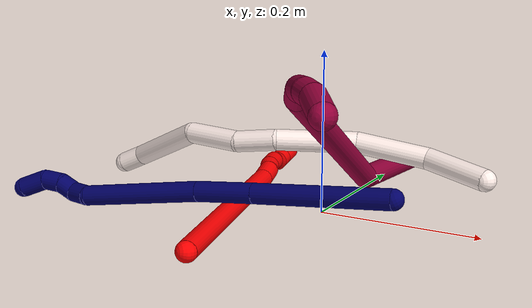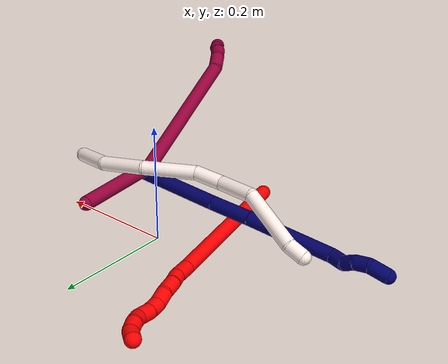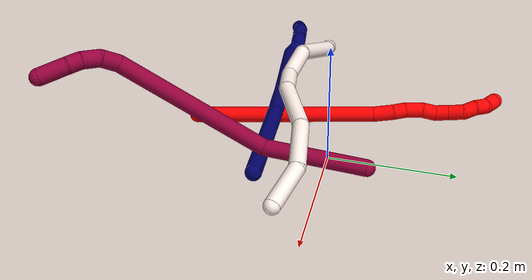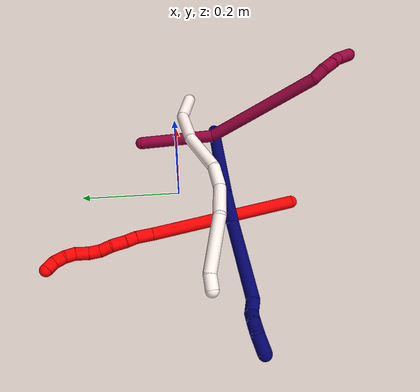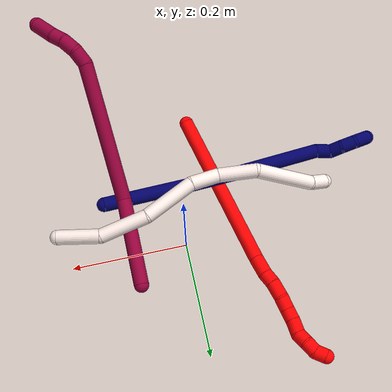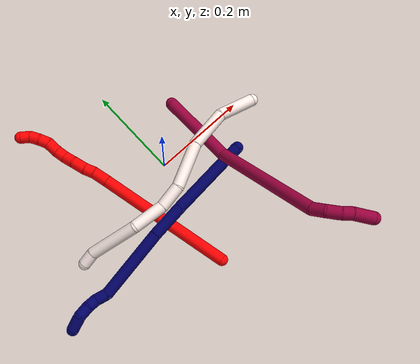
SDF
<sdf version="1.7">
 <world name="default">
  <model name="photoneo_s_sensor">
   <static>1</static>
   <pose>0 0 2 1.57079 1.57079 3.14159</pose>
   <link name="link">
    <inertial><mass>0.1</mass></inertial>
    <sensor name="sensor" type="depth">
     <update_rate>30</update_rate>
     <camera>
      <horizontal_fov>1.22</horizontal_fov>
      <image><width>1920</width><height>1200</height><format>B8G8R8</format></image>
      <clip><near>0.1</near><far>4</far></clip>
      <depth_camera><output>points</output></depth_camera>
     </camera>
     <plugin name="camera_plugin" filename="libgazebo_ros_depth_camera.so">
      <baseline>0.2</baseline>
      <alwaysOn>1</alwaysOn>
      <updateRate>0.0</updateRate>
      <cameraName>camera_ir</cameraName>
      <imageTopicName>/camera/color/image_raw</imageTopicName>
      <cameraInfoTopicName>/camera/color/camera_info</cameraInfoTopicName>
      <depthImageTopicName>/camera/depth/image_raw</depthImageTopicName>
      <depthImageCameraInfoTopicName>/camera/depth/camera_info</depthImageCameraInfoTopicName>
      <pointCloudTopicName>/camera/depth/points</pointCloudTopicName>
      <frameName>fr_optical</frameName>
      <pointCloudCutoff>0.1</pointCloudCutoff>
      <pointCloudCutoffMax>2.0</pointCloudCutoffMax>
      <distortionK1>0</distortionK1>
      <distortionK2>0</distortionK2>
      <distortionK3>0</distortionK3>
      <distortionT1>0</distortionT1>
      <distortionT2>0</distortionT2>
      <CxPrime>0</CxPrime>
      <Cx>0</Cx>
      <Cy>0</Cy>
      <focalLength>0</focalLength>
      <hackBaseline>0</hackBaseline>
     </plugin>
    </sensor>
   </link>
  </model>
  <model name="bin">
   <static>1</static>
   <link name="bottom">
    <collision name="collision-bottom">
     <pose>0 0 -0.01 0 -0 0</pose>
     <geometry><box><size>0.8 0.6 0.02</size></box></geometry>
     <surface>
      <friction><ode><mu>100</mu><mu2>100</mu2></ode></friction>
      <contact><collide_bitmask>65535</collide_bitmask></contact>
     </surface>
    </collision>
   </link>
   <link name="west_wall">
    <collision name="collision-west_wall">
     <pose>-0.41 0 0.1 0 -0 0</pose>
     <geometry><box><size>0.02 0.6 0.2</size></box></geometry>
     <surface>
      <friction><ode><mu>100</mu><mu2>100</mu2></ode></friction>
      <contact><collide_bitmask>65535</collide_bitmask></contact>
     </surface>
    </collision>
   </link>
   <link name="east_wall">
    <collision name="collision-east_wall">
     <pose>0.41 0 0.1 0 -0 0</pose>
     <geometry><box><size>0.02 0.6 0.2</size></box></geometry>
     <surface>
      <friction><ode><mu>100</mu><mu2>100</mu2></ode></friction>
      <contact><collide_bitmask>65535</collide_bitmask></contact>
     </surface>
    </collision>
   </link>
   <link name="south_wall">
    <collision name="collision-south_wall">
     <pose>0 -0.31 0.1 0 -0 0</pose>
     <geometry><box><size>0.8 0.02 0.2</size></box></geometry>
     <surface>
      <friction><ode><mu>100</mu><mu2>100</mu2></ode></friction>
      <contact><collide_bitmask>65535</collide_bitmask></contact>
     </surface>
    </collision>
   </link>
   <link name="north_wall">
    <collision name="collision-north_wall">
     <pose>0 0.31 0.1 0 -0 0</pose>
     <geometry><box><size>0.8 0.02 0.2</size></box></geometry>
     <surface>
      <friction><ode><mu>100</mu><mu2>100</mu2></ode></friction>
      <contact><collide_bitmask>65535</collide_bitmask></contact>
     </surface>
    </collision>
   </link>
  </model>
  <model name="2">
   <static>0</static>
   <link name="2">
    <collision name="collision-cylinder-e_1_1_4">
     <pose>-0.02722 0.100876 0.099294 -0.793299 -0.189989 0.079775</pose>
     <geometry><cylinder><radius>0.0125</radius><length>0.288279</length></cylinder></geometry>
     <surface>
      <friction><ode><mu>1.16</mu><mu2>1.16</mu2><slip1>0</slip1><slip2>0</slip2></ode></friction>
      <contact><ode><kp>1e+06</kp><kd>1</kd><max_vel>0</max_vel><min_depth>0.001</min_depth></ode></contact>
     </surface>
    </collision>
    <visual name="visual-cylinder-e_1_1_4">
     <pose>-0.02722 0.100876 0.099294 -0.793299 -0.189989 0.079775</pose>
     <geometry><cylinder><radius>0.0125</radius><length>0.288279</length></cylinder></geometry>
     <material><ambient>1 0 0 1</ambient></material>
    </visual>
    <collision name="collision-cylinder-e_2_4_5">
     <pose>-0.059069 0.212984 0.209192 -0.814165 -0.291095 0.126237</pose>
     <geometry><cylinder><radius>0.0125</radius><length>0.032251</length></cylinder></geometry>
     <surface>
      <friction><ode><mu>1.16</mu><mu2>1.16</mu2><slip1>0</slip1><slip2>0</slip2></ode></friction>
      <contact><ode><kp>1e+06</kp><kd>1</kd><max_vel>0</max_vel><min_depth>0.001</min_depth></ode></contact>
     </surface>
    </collision>
    <visual name="visual-cylinder-e_2_4_5">
     <pose>-0.059069 0.212984 0.209192 -0.814165 -0.291095 0.126237</pose>
     <geometry><cylinder><radius>0.0125</radius><length>0.032251</length></cylinder></geometry>
     <material><ambient>1 0 0 1</ambient></material>
    </visual>
    <collision name="collision-cylinder-e_3_5_6">
     <pose>-0.066253 0.232582 0.225003 -1.01411 -0.253811 0.141517</pose>
     <geometry><cylinder><radius>0.0125</radius><length>0.02036</length></cylinder></geometry>
     <surface>
      <friction><ode><mu>1.16</mu><mu2>1.16</mu2><slip1>0</slip1><slip2>0</slip2></ode></friction>
      <contact><ode><kp>1e+06</kp><kd>1</kd><max_vel>0</max_vel><min_depth>0.001</min_depth></ode></contact>
     </surface>
    </collision>
    <visual name="visual-cylinder-e_3_5_6">
     <pose>-0.066253 0.232582 0.225003 -1.01411 -0.253811 0.141517</pose>
     <geometry><cylinder><radius>0.0125</radius><length>0.02036</length></cylinder></geometry>
     <material><ambient>1 0 0 1</ambient></material>
    </visual>
    <collision name="collision-cylinder-e_4_6_7">
     <pose>-0.071166 0.251312 0.239209 -0.855735 -0.170006 0.077678</pose>
     <geometry><cylinder><radius>0.0125</radius><length>0.027856</length></cylinder></geometry>
     <surface>
      <friction><ode><mu>1.16</mu><mu2>1.16</mu2><slip1>0</slip1><slip2>0</slip2></ode></friction>
      <contact><ode><kp>1e+06</kp><kd>1</kd><max_vel>0</max_vel><min_depth>0.001</min_depth></ode></contact>
     </surface>
    </collision>
    <visual name="visual-cylinder-e_4_6_7">
     <pose>-0.071166 0.251312 0.239209 -0.855735 -0.170006 0.077678</pose>
     <geometry><cylinder><radius>0.0125</radius><length>0.027856</length></cylinder></geometry>
     <material><ambient>1 0 0 1</ambient></material>
    </visual>
    <collision name="collision-cylinder-e_5_7_8">
     <pose>-0.072387 0.270421 0.255831 -0.853923 0.097518 -0.044393</pose>
     <geometry><cylinder><radius>0.0125</radius><length>0.02331</length></cylinder></geometry>
     <surface>
      <friction><ode><mu>1.16</mu><mu2>1.16</mu2><slip1>0</slip1><slip2>0</slip2></ode></friction>
      <contact><ode><kp>1e+06</kp><kd>1</kd><max_vel>0</max_vel><min_depth>0.001</min_depth></ode></contact>
     </surface>
    </collision>
    <visual name="visual-cylinder-e_5_7_8">
     <pose>-0.072387 0.270421 0.255831 -0.853923 0.097518 -0.044393</pose>
     <geometry><cylinder><radius>0.0125</radius><length>0.02331</length></cylinder></geometry>
     <material><ambient>1 0 0 1</ambient></material>
    </visual>
    <collision name="collision-cylinder-e_6_8_9">
     <pose>-0.073628 0.286652 0.271046 -0.778291 -0.219216 0.090191</pose>
     <geometry><cylinder><radius>0.0125</radius><length>0.02185</length></cylinder></geometry>
     <surface>
      <friction><ode><mu>1.16</mu><mu2>1.16</mu2><slip1>0</slip1><slip2>0</slip2></ode></friction>
      <contact><ode><kp>1e+06</kp><kd>1</kd><max_vel>0</max_vel><min_depth>0.001</min_depth></ode></contact>
     </surface>
    </collision>
    <visual name="visual-cylinder-e_6_8_9">
     <pose>-0.073628 0.286652 0.271046 -0.778291 -0.219216 0.090191</pose>
     <geometry><cylinder><radius>0.0125</radius><length>0.02185</length></cylinder></geometry>
     <material><ambient>1 0 0 1</ambient></material>
    </visual>
    <collision name="collision-cylinder-e_7_9_10">
     <pose>-0.080067 0.301327 0.288458 -0.631909 -0.322285 0.106178</pose>
     <geometry><cylinder><radius>0.0125</radius><length>0.025658</length></cylinder></geometry>
     <surface>
      <friction><ode><mu>1.16</mu><mu2>1.16</mu2><slip1>0</slip1><slip2>0</slip2></ode></friction>
      <contact><ode><kp>1e+06</kp><kd>1</kd><max_vel>0</max_vel><min_depth>0.001</min_depth></ode></contact>
     </surface>
    </collision>
    <visual name="visual-cylinder-e_7_9_10">
     <pose>-0.080067 0.301327 0.288458 -0.631909 -0.322285 0.106178</pose>
     <geometry><cylinder><radius>0.0125</radius><length>0.025658</length></cylinder></geometry>
     <material><ambient>1 0 0 1</ambient></material>
    </visual>
    <collision name="collision-cylinder-e_8_10_11">
     <pose>-0.088539 0.316355 0.302724 -1.05482 -0.454905 0.268007</pose>
     <geometry><cylinder><radius>0.0125</radius><length>0.020068</length></cylinder></geometry>
     <surface>
      <friction><ode><mu>1.16</mu><mu2>1.16</mu2><slip1>0</slip1><slip2>0</slip2></ode></friction>
      <contact><ode><kp>1e+06</kp><kd>1</kd><max_vel>0</max_vel><min_depth>0.001</min_depth></ode></contact>
     </surface>
    </collision>
    <visual name="visual-cylinder-e_8_10_11">
     <pose>-0.088539 0.316355 0.302724 -1.05482 -0.454905 0.268007</pose>
     <geometry><cylinder><radius>0.0125</radius><length>0.020068</length></cylinder></geometry>
     <material><ambient>1 0 0 1</ambient></material>
    </visual>
    <collision name="collision-cylinder-e_9_11_12">
     <pose>-0.094679 0.333054 0.311687 -1.09944 -0.172327 0.105751</pose>
     <geometry><cylinder><radius>0.0125</radius><length>0.020186</length></cylinder></geometry>
     <surface>
      <friction><ode><mu>1.16</mu><mu2>1.16</mu2><slip1>0</slip1><slip2>0</slip2></ode></friction>
      <contact><ode><kp>1e+06</kp><kd>1</kd><max_vel>0</max_vel><min_depth>0.001</min_depth></ode></contact>
     </surface>
    </collision>
    <visual name="visual-cylinder-e_9_11_12">
     <pose>-0.094679 0.333054 0.311687 -1.09944 -0.172327 0.105751</pose>
     <geometry><cylinder><radius>0.0125</radius><length>0.020186</length></cylinder></geometry>
     <material><ambient>1 0 0 1</ambient></material>
    </visual>
    <collision name="collision-cylinder-e_10_12_2">
     <pose>-0.098979 0.351661 0.316674 -1.52245 -0.257447 0.245417</pose>
     <geometry><cylinder><radius>0.0125</radius><length>0.020183</length></cylinder></geometry>
     <surface>
      <friction><ode><mu>1.16</mu><mu2>1.16</mu2><slip1>0</slip1><slip2>0</slip2></ode></friction>
      <contact><ode><kp>1e+06</kp><kd>1</kd><max_vel>0</max_vel><min_depth>0.001</min_depth></ode></contact>
     </surface>
    </collision>
    <visual name="visual-cylinder-e_10_12_2">
     <pose>-0.098979 0.351661 0.316674 -1.52245 -0.257447 0.245417</pose>
     <geometry><cylinder><radius>0.0125</radius><length>0.020183</length></cylinder></geometry>
     <material><ambient>1 0 0 1</ambient></material>
    </visual>
    <collision name="collision-sphere-2">
     <pose>-0.101548 0.361408 0.317145 0 -0 0</pose>
     <geometry><sphere><radius>0.0125</radius></sphere></geometry>
     <surface>
      <friction><ode><mu>1.16</mu><mu2>1.16</mu2><slip1>0</slip1><slip2>0</slip2></ode></friction>
      <contact><ode><kp>1e+06</kp><kd>1</kd><max_vel>0</max_vel><min_depth>0.001</min_depth></ode></contact>
     </surface>
    </collision>
    <visual name="visual-sphere-2">
     <pose>-0.101548 0.361408 0.317145 0 -0 0</pose>
     <geometry><sphere><radius>0.0125</radius></sphere></geometry>
     <material><ambient>1 0 0 1</ambient></material>
    </visual>
    <collision name="collision-sphere-12">
     <pose>-0.09641 0.341913 0.316202 0 -0 0</pose>
     <geometry><sphere><radius>0.0125</radius></sphere></geometry>
     <surface>
      <friction><ode><mu>1.16</mu><mu2>1.16</mu2><slip1>0</slip1><slip2>0</slip2></ode></friction>
      <contact><ode><kp>1e+06</kp><kd>1</kd><max_vel>0</max_vel><min_depth>0.001</min_depth></ode></contact>
     </surface>
    </collision>
    <visual name="visual-sphere-12">
     <pose>-0.09641 0.341913 0.316202 0 -0 0</pose>
     <geometry><sphere><radius>0.0125</radius></sphere></geometry>
     <material><ambient>1 0 0 1</ambient></material>
    </visual>
    <collision name="collision-sphere-11">
     <pose>-0.092948 0.324194 0.307171 0 -0 0</pose>
     <geometry><sphere><radius>0.0125</radius></sphere></geometry>
     <surface>
      <friction><ode><mu>1.16</mu><mu2>1.16</mu2><slip1>0</slip1><slip2>0</slip2></ode></friction>
      <contact><ode><kp>1e+06</kp><kd>1</kd><max_vel>0</max_vel><min_depth>0.001</min_depth></ode></contact>
     </surface>
    </collision>
    <visual name="visual-sphere-11">
     <pose>-0.092948 0.324194 0.307171 0 -0 0</pose>
     <geometry><sphere><radius>0.0125</radius></sphere></geometry>
     <material><ambient>1 0 0 1</ambient></material>
    </visual>
    <collision name="collision-sphere-10">
     <pose>-0.084131 0.308515 0.298277 0 -0 0</pose>
     <geometry><sphere><radius>0.0125</radius></sphere></geometry>
     <surface>
      <friction><ode><mu>1.16</mu><mu2>1.16</mu2><slip1>0</slip1><slip2>0</slip2></ode></friction>
      <contact><ode><kp>1e+06</kp><kd>1</kd><max_vel>0</max_vel><min_depth>0.001</min_depth></ode></contact>
     </surface>
    </collision>
    <visual name="visual-sphere-10">
     <pose>-0.084131 0.308515 0.298277 0 -0 0</pose>
     <geometry><sphere><radius>0.0125</radius></sphere></geometry>
     <material><ambient>1 0 0 1</ambient></material>
    </visual>
    <collision name="collision-sphere-9">
     <pose>-0.076004 0.294139 0.27864 0 -0 0</pose>
     <geometry><sphere><radius>0.0125</radius></sphere></geometry>
     <surface>
      <friction><ode><mu>1.16</mu><mu2>1.16</mu2><slip1>0</slip1><slip2>0</slip2></ode></friction>
      <contact><ode><kp>1e+06</kp><kd>1</kd><max_vel>0</max_vel><min_depth>0.001</min_depth></ode></contact>
     </surface>
    </collision>
    <visual name="visual-sphere-9">
     <pose>-0.076004 0.294139 0.27864 0 -0 0</pose>
     <geometry><sphere><radius>0.0125</radius></sphere></geometry>
     <material><ambient>1 0 0 1</ambient></material>
    </visual>
    <collision name="collision-sphere-4">
     <pose>-0.054441 0.201751 0.198588 0 -0 0</pose>
     <geometry><sphere><radius>0.0125</radius></sphere></geometry>
     <surface>
      <friction><ode><mu>1.16</mu><mu2>1.16</mu2><slip1>0</slip1><slip2>0</slip2></ode></friction>
      <contact><ode><kp>1e+06</kp><kd>1</kd><max_vel>0</max_vel><min_depth>0.001</min_depth></ode></contact>
     </surface>
    </collision>
    <visual name="visual-sphere-4">
     <pose>-0.054441 0.201751 0.198588 0 -0 0</pose>
     <geometry><sphere><radius>0.0125</radius></sphere></geometry>
     <material><ambient>1 0 0 1</ambient></material>
    </visual>
    <collision name="collision-sphere-1">
     <geometry><sphere><radius>0.0125</radius></sphere></geometry>
     <surface>
      <friction><ode><mu>1.16</mu><mu2>1.16</mu2><slip1>0</slip1><slip2>0</slip2></ode></friction>
      <contact><ode><kp>1e+06</kp><kd>1</kd><max_vel>0</max_vel><min_depth>0.001</min_depth></ode></contact>
     </surface>
    </collision>
    <visual name="visual-sphere-1">
     <geometry><sphere><radius>0.0125</radius></sphere></geometry>
     <material><ambient>1 0 0 1</ambient></material>
    </visual>
    <collision name="collision-sphere-8">
     <pose>-0.071252 0.279166 0.263452 0 -0 0</pose>
     <geometry><sphere><radius>0.0125</radius></sphere></geometry>
     <surface>
      <friction><ode><mu>1.16</mu><mu2>1.16</mu2><slip1>0</slip1><slip2>0</slip2></ode></friction>
      <contact><ode><kp>1e+06</kp><kd>1</kd><max_vel>0</max_vel><min_depth>0.001</min_depth></ode></contact>
     </surface>
    </collision>
    <visual name="visual-sphere-8">
     <pose>-0.071252 0.279166 0.263452 0 -0 0</pose>
     <geometry><sphere><radius>0.0125</radius></sphere></geometry>
     <material><ambient>1 0 0 1</ambient></material>
    </visual>
    <collision name="collision-sphere-5">
     <pose>-0.063697 0.224216 0.219796 0 -0 0</pose>
     <geometry><sphere><radius>0.0125</radius></sphere></geometry>
     <surface>
      <friction><ode><mu>1.16</mu><mu2>1.16</mu2><slip1>0</slip1><slip2>0</slip2></ode></friction>
      <contact><ode><kp>1e+06</kp><kd>1</kd><max_vel>0</max_vel><min_depth>0.001</min_depth></ode></contact>
     </surface>
    </collision>
    <visual name="visual-sphere-5">
     <pose>-0.063697 0.224216 0.219796 0 -0 0</pose>
     <geometry><sphere><radius>0.0125</radius></sphere></geometry>
     <material><ambient>1 0 0 1</ambient></material>
    </visual>
    <collision name="collision-sphere-6">
     <pose>-0.068809 0.240948 0.230209 0 -0 0</pose>
     <geometry><sphere><radius>0.0125</radius></sphere></geometry>
     <surface>
      <friction><ode><mu>1.16</mu><mu2>1.16</mu2><slip1>0</slip1><slip2>0</slip2></ode></friction>
      <contact><ode><kp>1e+06</kp><kd>1</kd><max_vel>0</max_vel><min_depth>0.001</min_depth></ode></contact>
     </surface>
    </collision>
    <visual name="visual-sphere-6">
     <pose>-0.068809 0.240948 0.230209 0 -0 0</pose>
     <geometry><sphere><radius>0.0125</radius></sphere></geometry>
     <material><ambient>1 0 0 1</ambient></material>
    </visual>
    <collision name="collision-sphere-7">
     <pose>-0.073522 0.261677 0.24821 0 -0 0</pose>
     <geometry><sphere><radius>0.0125</radius></sphere></geometry>
     <surface>
      <friction><ode><mu>1.16</mu><mu2>1.16</mu2><slip1>0</slip1><slip2>0</slip2></ode></friction>
      <contact><ode><kp>1e+06</kp><kd>1</kd><max_vel>0</max_vel><min_depth>0.001</min_depth></ode></contact>
     </surface>
    </collision>
    <visual name="visual-sphere-7">
     <pose>-0.073522 0.261677 0.24821 0 -0 0</pose>
     <geometry><sphere><radius>0.0125</radius></sphere></geometry>
     <material><ambient>1 0 0 1</ambient></material>
    </visual>
    <inertial>
     <pose>-0.048239 0.176305 0.169321 0 -0 0</pose>
     <mass>0.5</mass>
     <inertia>
      <ixx>0.002135</ixx>
      <ixy>0</ixy>
      <ixz>0</ixz>
      <iyy>0.001625</iyy>
      <iyz>0</iyz>
      <izz>-0.001011</izz>
     </inertia>
    </inertial>
   </link>
   <pose>-0.048465 -0.227289 0.011493 -1.82183 1.36175 -0.831418</pose>
  </model>
  <model name="7">
   <static>0</static>
   <link name="7">
    <collision name="collision-cylinder-e_1_1_4">
     <pose>-0.030685 -0.020936 0.075707 0.269802 -0.372416 -0.051128</pose>
     <geometry><cylinder><radius>0.0125</radius><length>0.168658</length></cylinder></geometry>
     <surface>
      <friction><ode><mu>1.16</mu><mu2>1.16</mu2><slip1>0</slip1><slip2>0</slip2></ode></friction>
      <contact><ode><kp>1e+06</kp><kd>1</kd><max_vel>0</max_vel><min_depth>0.001</min_depth></ode></contact>
     </surface>
    </collision>
    <visual name="visual-cylinder-e_1_1_4">
     <pose>-0.030685 -0.020936 0.075707 0.269802 -0.372416 -0.051128</pose>
     <geometry><cylinder><radius>0.0125</radius><length>0.168658</length></cylinder></geometry>
     <material><ambient>0.003922 0 0.403922 1</ambient></material>
    </visual>
    <collision name="collision-cylinder-e_2_4_5">
     <pose>-0.074516 -0.049947 0.184407 0.240019 -0.369305 -0.04504</pose>
     <geometry><cylinder><radius>0.0125</radius><length>0.072845</length></cylinder></geometry>
     <surface>
      <friction><ode><mu>1.16</mu><mu2>1.16</mu2><slip1>0</slip1><slip2>0</slip2></ode></friction>
      <contact><ode><kp>1e+06</kp><kd>1</kd><max_vel>0</max_vel><min_depth>0.001</min_depth></ode></contact>
     </surface>
    </collision>
    <visual name="visual-cylinder-e_2_4_5">
     <pose>-0.074516 -0.049947 0.184407 0.240019 -0.369305 -0.04504</pose>
     <geometry><cylinder><radius>0.0125</radius><length>0.072845</length></cylinder></geometry>
     <material><ambient>0.003922 0 0.403922 1</ambient></material>
    </visual>
    <collision name="collision-cylinder-e_3_5_6">
     <pose>-0.111081 -0.07255 0.289338 0.199267 -0.308871 -0.031121</pose>
     <geometry><cylinder><radius>0.0125</radius><length>0.154071</length></cylinder></geometry>
     <surface>
      <friction><ode><mu>1.16</mu><mu2>1.16</mu2><slip1>0</slip1><slip2>0</slip2></ode></friction>
      <contact><ode><kp>1e+06</kp><kd>1</kd><max_vel>0</max_vel><min_depth>0.001</min_depth></ode></contact>
     </surface>
    </collision>
    <visual name="visual-cylinder-e_3_5_6">
     <pose>-0.111081 -0.07255 0.289338 0.199267 -0.308871 -0.031121</pose>
     <geometry><cylinder><radius>0.0125</radius><length>0.154071</length></cylinder></geometry>
     <material><ambient>0.003922 0 0.403922 1</ambient></material>
    </visual>
    <collision name="collision-cylinder-e_4_6_7">
     <pose>-0.140126 -0.093769 0.371093 0.598316 -0.442301 -0.138458</pose>
     <geometry><cylinder><radius>0.0125</radius><length>0.026293</length></cylinder></geometry>
     <surface>
      <friction><ode><mu>1.16</mu><mu2>1.16</mu2><slip1>0</slip1><slip2>0</slip2></ode></friction>
      <contact><ode><kp>1e+06</kp><kd>1</kd><max_vel>0</max_vel><min_depth>0.001</min_depth></ode></contact>
     </surface>
    </collision>
    <visual name="visual-cylinder-e_4_6_7">
     <pose>-0.140126 -0.093769 0.371093 0.598316 -0.442301 -0.138458</pose>
     <geometry><cylinder><radius>0.0125</radius><length>0.026293</length></cylinder></geometry>
     <material><ambient>0.003922 0 0.403922 1</ambient></material>
    </visual>
    <collision name="collision-cylinder-e_5_7_8">
     <pose>-0.154136 -0.102127 0.387467 0.248758 -0.891859 -0.119392</pose>
     <geometry><cylinder><radius>0.0125</radius><length>0.021545</length></cylinder></geometry>
     <surface>
      <friction><ode><mu>1.16</mu><mu2>1.16</mu2><slip1>0</slip1><slip2>0</slip2></ode></friction>
      <contact><ode><kp>1e+06</kp><kd>1</kd><max_vel>0</max_vel><min_depth>0.001</min_depth></ode></contact>
     </surface>
    </collision>
    <visual name="visual-cylinder-e_5_7_8">
     <pose>-0.154136 -0.102127 0.387467 0.248758 -0.891859 -0.119392</pose>
     <geometry><cylinder><radius>0.0125</radius><length>0.021545</length></cylinder></geometry>
     <material><ambient>0.003922 0 0.403922 1</ambient></material>
    </visual>
    <collision name="collision-cylinder-e_6_8_9">
     <pose>-0.168715 -0.105553 0.404153 0.172013 -0.542318 -0.04793</pose>
     <geometry><cylinder><radius>0.0125</radius><length>0.024006</length></cylinder></geometry>
     <surface>
      <friction><ode><mu>1.16</mu><mu2>1.16</mu2><slip1>0</slip1><slip2>0</slip2></ode></friction>
      <contact><ode><kp>1e+06</kp><kd>1</kd><max_vel>0</max_vel><min_depth>0.001</min_depth></ode></contact>
     </surface>
    </collision>
    <visual name="visual-cylinder-e_6_8_9">
     <pose>-0.168715 -0.105553 0.404153 0.172013 -0.542318 -0.04793</pose>
     <geometry><cylinder><radius>0.0125</radius><length>0.024006</length></cylinder></geometry>
     <material><ambient>0.003922 0 0.403922 1</ambient></material>
    </visual>
    <collision name="collision-cylinder-e_7_9_2">
     <pose>-0.175724 -0.108416 0.430515 0.067867 -0.049972 -0.001697</pose>
     <geometry><cylinder><radius>0.0125</radius><length>0.032581</length></cylinder></geometry>
     <surface>
      <friction><ode><mu>1.16</mu><mu2>1.16</mu2><slip1>0</slip1><slip2>0</slip2></ode></friction>
      <contact><ode><kp>1e+06</kp><kd>1</kd><max_vel>0</max_vel><min_depth>0.001</min_depth></ode></contact>
     </surface>
    </collision>
    <visual name="visual-cylinder-e_7_9_2">
     <pose>-0.175724 -0.108416 0.430515 0.067867 -0.049972 -0.001697</pose>
     <geometry><cylinder><radius>0.0125</radius><length>0.032581</length></cylinder></geometry>
     <material><ambient>0.003922 0 0.403922 1</ambient></material>
    </visual>
    <collision name="collision-sphere-2">
     <pose>-0.176538 -0.109519 0.446747 0 -0 0</pose>
     <geometry><sphere><radius>0.0125</radius></sphere></geometry>
     <surface>
      <friction><ode><mu>1.16</mu><mu2>1.16</mu2><slip1>0</slip1><slip2>0</slip2></ode></friction>
      <contact><ode><kp>1e+06</kp><kd>1</kd><max_vel>0</max_vel><min_depth>0.001</min_depth></ode></contact>
     </surface>
    </collision>
    <visual name="visual-sphere-2">
     <pose>-0.176538 -0.109519 0.446747 0 -0 0</pose>
     <geometry><sphere><radius>0.0125</radius></sphere></geometry>
     <material><ambient>0.003922 0 0.403922 1</ambient></material>
    </visual>
    <collision name="collision-sphere-9">
     <pose>-0.17491 -0.107312 0.414282 0 -0 0</pose>
     <geometry><sphere><radius>0.0125</radius></sphere></geometry>
     <surface>
      <friction><ode><mu>1.16</mu><mu2>1.16</mu2><slip1>0</slip1><slip2>0</slip2></ode></friction>
      <contact><ode><kp>1e+06</kp><kd>1</kd><max_vel>0</max_vel><min_depth>0.001</min_depth></ode></contact>
     </surface>
    </collision>
    <visual name="visual-sphere-9">
     <pose>-0.17491 -0.107312 0.414282 0 -0 0</pose>
     <geometry><sphere><radius>0.0125</radius></sphere></geometry>
     <material><ambient>0.003922 0 0.403922 1</ambient></material>
    </visual>
    <collision name="collision-sphere-4">
     <pose>-0.061369 -0.041873 0.151414 0 -0 0</pose>
     <geometry><sphere><radius>0.0125</radius></sphere></geometry>
     <surface>
      <friction><ode><mu>1.16</mu><mu2>1.16</mu2><slip1>0</slip1><slip2>0</slip2></ode></friction>
      <contact><ode><kp>1e+06</kp><kd>1</kd><max_vel>0</max_vel><min_depth>0.001</min_depth></ode></contact>
     </surface>
    </collision>
    <visual name="visual-sphere-4">
     <pose>-0.061369 -0.041873 0.151414 0 -0 0</pose>
     <geometry><sphere><radius>0.0125</radius></sphere></geometry>
     <material><ambient>0.003922 0 0.403922 1</ambient></material>
    </visual>
    <collision name="collision-sphere-1">
     <geometry><sphere><radius>0.0125</radius></sphere></geometry>
     <surface>
      <friction><ode><mu>1.16</mu><mu2>1.16</mu2><slip1>0</slip1><slip2>0</slip2></ode></friction>
      <contact><ode><kp>1e+06</kp><kd>1</kd><max_vel>0</max_vel><min_depth>0.001</min_depth></ode></contact>
     </surface>
    </collision>
    <visual name="visual-sphere-1">
     <geometry><sphere><radius>0.0125</radius></sphere></geometry>
     <material><ambient>0.003922 0 0.403922 1</ambient></material>
    </visual>
    <collision name="collision-sphere-8">
     <pose>-0.16252 -0.103793 0.394023 0 -0 0</pose>
     <geometry><sphere><radius>0.0125</radius></sphere></geometry>
     <surface>
      <friction><ode><mu>1.16</mu><mu2>1.16</mu2><slip1>0</slip1><slip2>0</slip2></ode></friction>
      <contact><ode><kp>1e+06</kp><kd>1</kd><max_vel>0</max_vel><min_depth>0.001</min_depth></ode></contact>
     </surface>
    </collision>
    <visual name="visual-sphere-8">
     <pose>-0.16252 -0.103793 0.394023 0 -0 0</pose>
     <geometry><sphere><radius>0.0125</radius></sphere></geometry>
     <material><ambient>0.003922 0 0.403922 1</ambient></material>
    </visual>
    <collision name="collision-sphere-5">
     <pose>-0.087664 -0.058022 0.2174 0 -0 0</pose>
     <geometry><sphere><radius>0.0125</radius></sphere></geometry>
     <surface>
      <friction><ode><mu>1.16</mu><mu2>1.16</mu2><slip1>0</slip1><slip2>0</slip2></ode></friction>
      <contact><ode><kp>1e+06</kp><kd>1</kd><max_vel>0</max_vel><min_depth>0.001</min_depth></ode></contact>
     </surface>
    </collision>
    <visual name="visual-sphere-5">
     <pose>-0.087664 -0.058022 0.2174 0 -0 0</pose>
     <geometry><sphere><radius>0.0125</radius></sphere></geometry>
     <material><ambient>0.003922 0 0.403922 1</ambient></material>
    </visual>
    <collision name="collision-sphere-6">
     <pose>-0.134499 -0.087077 0.361275 0 -0 0</pose>
     <geometry><sphere><radius>0.0125</radius></sphere></geometry>
     <surface>
      <friction><ode><mu>1.16</mu><mu2>1.16</mu2><slip1>0</slip1><slip2>0</slip2></ode></friction>
      <contact><ode><kp>1e+06</kp><kd>1</kd><max_vel>0</max_vel><min_depth>0.001</min_depth></ode></contact>
     </surface>
    </collision>
    <visual name="visual-sphere-6">
     <pose>-0.134499 -0.087077 0.361275 0 -0 0</pose>
     <geometry><sphere><radius>0.0125</radius></sphere></geometry>
     <material><ambient>0.003922 0 0.403922 1</ambient></material>
    </visual>
    <collision name="collision-sphere-7">
     <pose>-0.145753 -0.100462 0.38091 0 -0 0</pose>
     <geometry><sphere><radius>0.0125</radius></sphere></geometry>
     <surface>
      <friction><ode><mu>1.16</mu><mu2>1.16</mu2><slip1>0</slip1><slip2>0</slip2></ode></friction>
      <contact><ode><kp>1e+06</kp><kd>1</kd><max_vel>0</max_vel><min_depth>0.001</min_depth></ode></contact>
     </surface>
    </collision>
    <visual name="visual-sphere-7">
     <pose>-0.145753 -0.100462 0.38091 0 -0 0</pose>
     <geometry><sphere><radius>0.0125</radius></sphere></geometry>
     <material><ambient>0.003922 0 0.403922 1</ambient></material>
    </visual>
    <inertial>
     <pose>-0.088997 -0.058159 0.225229 0 -0 0</pose>
     <mass>0.5</mass>
     <inertia>
      <ixx>0.000672</ixx>
      <ixy>0</ixy>
      <ixz>0</ixz>
      <iyy>0.000703</iyy>
      <iyz>0</iyz>
      <izz>0.000463</izz>
     </inertia>
    </inertial>
   </link>
   <pose>0.125251 -0.083553 0.056974 2.68696 1.10214 -0.108651</pose>
  </model>
  <model name="8">
   <static>0</static>
   <link name="8">
    <collision name="collision-cylinder-e_1_1_4">
     <pose>2e-06 0.000792 0.075425 -0.010501 3e-05 -0</pose>
     <geometry><cylinder><radius>0.0125</radius><length>0.150858</length></cylinder></geometry>
     <surface>
      <friction><ode><mu>1.16</mu><mu2>1.16</mu2><slip1>0</slip1><slip2>0</slip2></ode></friction>
      <contact><ode><kp>1e+06</kp><kd>1</kd><max_vel>0</max_vel><min_depth>0.001</min_depth></ode></contact>
     </surface>
    </collision>
    <visual name="visual-cylinder-e_1_1_4">
     <pose>2e-06 0.000792 0.075425 -0.010501 3e-05 -0</pose>
     <geometry><cylinder><radius>0.0125</radius><length>0.150858</length></cylinder></geometry>
     <material><ambient>0.584314 0 0.227451 1</ambient></material>
    </visual>
    <collision name="collision-cylinder-e_2_4_5">
     <pose>0.002665 -0.052438 0.25536 0.477079 0.022608 0.005498</pose>
     <geometry><cylinder><radius>0.0125</radius><length>0.235353</length></cylinder></geometry>
     <surface>
      <friction><ode><mu>1.16</mu><mu2>1.16</mu2><slip1>0</slip1><slip2>0</slip2></ode></friction>
      <contact><ode><kp>1e+06</kp><kd>1</kd><max_vel>0</max_vel><min_depth>0.001</min_depth></ode></contact>
     </surface>
    </collision>
    <visual name="visual-cylinder-e_2_4_5">
     <pose>0.002665 -0.052438 0.25536 0.477079 0.022608 0.005498</pose>
     <geometry><cylinder><radius>0.0125</radius><length>0.235353</length></cylinder></geometry>
     <material><ambient>0.584314 0 0.227451 1</ambient></material>
    </visual>
    <collision name="collision-cylinder-e_3_5_6">
     <pose>0.000533 -0.113203 0.3706 0.561096 -0.361511 -0.105221</pose>
     <geometry><cylinder><radius>0.0125</radius><length>0.027098</length></cylinder></geometry>
     <surface>
      <friction><ode><mu>1.16</mu><mu2>1.16</mu2><slip1>0</slip1><slip2>0</slip2></ode></friction>
      <contact><ode><kp>1e+06</kp><kd>1</kd><max_vel>0</max_vel><min_depth>0.001</min_depth></ode></contact>
     </surface>
    </collision>
    <visual name="visual-cylinder-e_3_5_6">
     <pose>0.000533 -0.113203 0.3706 0.561096 -0.361511 -0.105221</pose>
     <geometry><cylinder><radius>0.0125</radius><length>0.027098</length></cylinder></geometry>
     <material><ambient>0.584314 0 0.227451 1</ambient></material>
    </visual>
    <collision name="collision-cylinder-e_4_6_7">
     <pose>-0.011893 -0.12216 0.391882 0.206793 -0.6161 -0.066009</pose>
     <geometry><cylinder><radius>0.0125</radius><length>0.026421</length></cylinder></geometry>
     <surface>
      <friction><ode><mu>1.16</mu><mu2>1.16</mu2><slip1>0</slip1><slip2>0</slip2></ode></friction>
      <contact><ode><kp>1e+06</kp><kd>1</kd><max_vel>0</max_vel><min_depth>0.001</min_depth></ode></contact>
     </surface>
    </collision>
    <visual name="visual-cylinder-e_4_6_7">
     <pose>-0.011893 -0.12216 0.391882 0.206793 -0.6161 -0.066009</pose>
     <geometry><cylinder><radius>0.0125</radius><length>0.026421</length></cylinder></geometry>
     <material><ambient>0.584314 0 0.227451 1</ambient></material>
    </visual>
    <collision name="collision-cylinder-e_5_7_8">
     <pose>-0.02689 -0.124599 0.409198 0.033299 -0.827506 -0.014623</pose>
     <geometry><cylinder><radius>0.0125</radius><length>0.020002</length></cylinder></geometry>
     <surface>
      <friction><ode><mu>1.16</mu><mu2>1.16</mu2><slip1>0</slip1><slip2>0</slip2></ode></friction>
      <contact><ode><kp>1e+06</kp><kd>1</kd><max_vel>0</max_vel><min_depth>0.001</min_depth></ode></contact>
     </surface>
    </collision>
    <visual name="visual-cylinder-e_5_7_8">
     <pose>-0.02689 -0.124599 0.409198 0.033299 -0.827506 -0.014623</pose>
     <geometry><cylinder><radius>0.0125</radius><length>0.020002</length></cylinder></geometry>
     <material><ambient>0.584314 0 0.227451 1</ambient></material>
    </visual>
    <collision name="collision-cylinder-e_6_8_2">
     <pose>-0.046852 -0.121907 0.431394 -0.186849 -0.676068 0.06585</pose>
     <geometry><cylinder><radius>0.0125</radius><length>0.040268</length></cylinder></geometry>
     <surface>
      <friction><ode><mu>1.16</mu><mu2>1.16</mu2><slip1>0</slip1><slip2>0</slip2></ode></friction>
      <contact><ode><kp>1e+06</kp><kd>1</kd><max_vel>0</max_vel><min_depth>0.001</min_depth></ode></contact>
     </surface>
    </collision>
    <visual name="visual-cylinder-e_6_8_2">
     <pose>-0.046852 -0.121907 0.431394 -0.186849 -0.676068 0.06585</pose>
     <geometry><cylinder><radius>0.0125</radius><length>0.040268</length></cylinder></geometry>
     <material><ambient>0.584314 0 0.227451 1</ambient></material>
    </visual>
    <collision name="collision-sphere-2">
     <pose>-0.05945 -0.118989 0.446826 0 -0 0</pose>
     <geometry><sphere><radius>0.0125</radius></sphere></geometry>
     <surface>
      <friction><ode><mu>1.16</mu><mu2>1.16</mu2><slip1>0</slip1><slip2>0</slip2></ode></friction>
      <contact><ode><kp>1e+06</kp><kd>1</kd><max_vel>0</max_vel><min_depth>0.001</min_depth></ode></contact>
     </surface>
    </collision>
    <visual name="visual-sphere-2">
     <pose>-0.05945 -0.118989 0.446826 0 -0 0</pose>
     <geometry><sphere><radius>0.0125</radius></sphere></geometry>
     <material><ambient>0.584314 0 0.227451 1</ambient></material>
    </visual>
    <collision name="collision-sphere-4">
     <pose>5e-06 0.001584 0.15085 0 -0 0</pose>
     <geometry><sphere><radius>0.0125</radius></sphere></geometry>
     <surface>
      <friction><ode><mu>1.16</mu><mu2>1.16</mu2><slip1>0</slip1><slip2>0</slip2></ode></friction>
      <contact><ode><kp>1e+06</kp><kd>1</kd><max_vel>0</max_vel><min_depth>0.001</min_depth></ode></contact>
     </surface>
    </collision>
    <visual name="visual-sphere-4">
     <pose>5e-06 0.001584 0.15085 0 -0 0</pose>
     <geometry><sphere><radius>0.0125</radius></sphere></geometry>
     <material><ambient>0.584314 0 0.227451 1</ambient></material>
    </visual>
    <collision name="collision-sphere-1">
     <geometry><sphere><radius>0.0125</radius></sphere></geometry>
     <surface>
      <friction><ode><mu>1.16</mu><mu2>1.16</mu2><slip1>0</slip1><slip2>0</slip2></ode></friction>
      <contact><ode><kp>1e+06</kp><kd>1</kd><max_vel>0</max_vel><min_depth>0.001</min_depth></ode></contact>
     </surface>
    </collision>
    <visual name="visual-sphere-1">
     <geometry><sphere><radius>0.0125</radius></sphere></geometry>
     <material><ambient>0.584314 0 0.227451 1</ambient></material>
    </visual>
    <collision name="collision-sphere-8">
     <pose>-0.034253 -0.124824 0.415961 0 -0 0</pose>
     <geometry><sphere><radius>0.0125</radius></sphere></geometry>
     <surface>
      <friction><ode><mu>1.16</mu><mu2>1.16</mu2><slip1>0</slip1><slip2>0</slip2></ode></friction>
      <contact><ode><kp>1e+06</kp><kd>1</kd><max_vel>0</max_vel><min_depth>0.001</min_depth></ode></contact>
     </surface>
    </collision>
    <visual name="visual-sphere-8">
     <pose>-0.034253 -0.124824 0.415961 0 -0 0</pose>
     <geometry><sphere><radius>0.0125</radius></sphere></geometry>
     <material><ambient>0.584314 0 0.227451 1</ambient></material>
    </visual>
    <collision name="collision-sphere-5">
     <pose>0.005325 -0.106459 0.35987 0 -0 0</pose>
     <geometry><sphere><radius>0.0125</radius></sphere></geometry>
     <surface>
      <friction><ode><mu>1.16</mu><mu2>1.16</mu2><slip1>0</slip1><slip2>0</slip2></ode></friction>
      <contact><ode><kp>1e+06</kp><kd>1</kd><max_vel>0</max_vel><min_depth>0.001</min_depth></ode></contact>
     </surface>
    </collision>
    <visual name="visual-sphere-5">
     <pose>0.005325 -0.106459 0.35987 0 -0 0</pose>
     <geometry><sphere><radius>0.0125</radius></sphere></geometry>
     <material><ambient>0.584314 0 0.227451 1</ambient></material>
    </visual>
    <collision name="collision-sphere-6">
     <pose>-0.004259 -0.119946 0.38133 0 -0 0</pose>
     <geometry><sphere><radius>0.0125</radius></sphere></geometry>
     <surface>
      <friction><ode><mu>1.16</mu><mu2>1.16</mu2><slip1>0</slip1><slip2>0</slip2></ode></friction>
      <contact><ode><kp>1e+06</kp><kd>1</kd><max_vel>0</max_vel><min_depth>0.001</min_depth></ode></contact>
     </surface>
    </collision>
    <visual name="visual-sphere-6">
     <pose>-0.004259 -0.119946 0.38133 0 -0 0</pose>
     <geometry><sphere><radius>0.0125</radius></sphere></geometry>
     <material><ambient>0.584314 0 0.227451 1</ambient></material>
    </visual>
    <collision name="collision-sphere-7">
     <pose>-0.019527 -0.124374 0.402434 0 -0 0</pose>
     <geometry><sphere><radius>0.0125</radius></sphere></geometry>
     <surface>
      <friction><ode><mu>1.16</mu><mu2>1.16</mu2><slip1>0</slip1><slip2>0</slip2></ode></friction>
      <contact><ode><kp>1e+06</kp><kd>1</kd><max_vel>0</max_vel><min_depth>0.001</min_depth></ode></contact>
     </surface>
    </collision>
    <visual name="visual-sphere-7">
     <pose>-0.019527 -0.124374 0.402434 0 -0 0</pose>
     <geometry><sphere><radius>0.0125</radius></sphere></geometry>
     <material><ambient>0.584314 0 0.227451 1</ambient></material>
    </visual>
    <inertial>
     <pose>-0.004194 -0.051836 0.234861 0 -0 0</pose>
     <mass>0.5</mass>
     <inertia><ixx>0.0014</ixx><ixy>0</ixy><ixz>0</ixz><iyy>0.001275</iyy><iyz>0</iyz><izz>0.000519</izz></inertia>
    </inertial>
   </link>
   <pose>0.088953 0.073103 0.06573 -1.4887 -0.187208 3.13335</pose>
  </model>
  <model name="11">
   <static>0</static>
   <link name="11">
    <collision name="collision-cylinder-e_1_1_4">
     <pose>-0.036142 -0.005607 0.005945 0.75611 -1.34842 -0.614653</pose>
     <geometry><cylinder><radius>0.0125</radius><length>0.074109</length></cylinder></geometry>
     <surface>
      <friction><ode><mu>1.16</mu><mu2>1.16</mu2><slip1>0</slip1><slip2>0</slip2></ode></friction>
      <contact><ode><kp>1e+06</kp><kd>1</kd><max_vel>0</max_vel><min_depth>0.001</min_depth></ode></contact>
     </surface>
    </collision>
    <visual name="visual-cylinder-e_1_1_4">
     <pose>-0.036142 -0.005607 0.005945 0.75611 -1.34842 -0.614653</pose>
     <geometry><cylinder><radius>0.0125</radius><length>0.074109</length></cylinder></geometry>
     <material><ambient>1 0.933333 0.909804 1</ambient></material>
    </visual>
    <collision name="collision-cylinder-e_2_4_5">
     <pose>-0.107084 -0.016781 0.034012 0.246541 -0.990563 -0.133659</pose>
     <geometry><cylinder><radius>0.0125</radius><length>0.08322</length></cylinder></geometry>
     <surface>
      <friction><ode><mu>1.16</mu><mu2>1.16</mu2><slip1>0</slip1><slip2>0</slip2></ode></friction>
      <contact><ode><kp>1e+06</kp><kd>1</kd><max_vel>0</max_vel><min_depth>0.001</min_depth></ode></contact>
     </surface>
    </collision>
    <visual name="visual-cylinder-e_2_4_5">
     <pose>-0.107084 -0.016781 0.034012 0.246541 -0.990563 -0.133659</pose>
     <geometry><cylinder><radius>0.0125</radius><length>0.08322</length></cylinder></geometry>
     <material><ambient>1 0.933333 0.909804 1</ambient></material>
    </visual>
    <collision name="collision-cylinder-e_3_5_6">
     <pose>-0.170862 -0.03201 0.090969 0.270543 -0.675722 -0.095562</pose>
     <geometry><cylinder><radius>0.0125</radius><length>0.092663</length></cylinder></geometry>
     <surface>
      <friction><ode><mu>1.16</mu><mu2>1.16</mu2><slip1>0</slip1><slip2>0</slip2></ode></friction>
      <contact><ode><kp>1e+06</kp><kd>1</kd><max_vel>0</max_vel><min_depth>0.001</min_depth></ode></contact>
     </surface>
    </collision>
    <visual name="visual-cylinder-e_3_5_6">
     <pose>-0.170862 -0.03201 0.090969 0.270543 -0.675722 -0.095562</pose>
     <geometry><cylinder><radius>0.0125</radius><length>0.092663</length></cylinder></geometry>
     <material><ambient>1 0.933333 0.909804 1</ambient></material>
    </visual>
    <collision name="collision-cylinder-e_4_6_7">
     <pose>-0.218555 -0.051236 0.138392 0.649819 -0.869348 -0.310276</pose>
     <geometry><cylinder><radius>0.0125</radius><length>0.048995</length></cylinder></geometry>
     <surface>
      <friction><ode><mu>1.16</mu><mu2>1.16</mu2><slip1>0</slip1><slip2>0</slip2></ode></friction>
      <contact><ode><kp>1e+06</kp><kd>1</kd><max_vel>0</max_vel><min_depth>0.001</min_depth></ode></contact>
     </surface>
    </collision>
    <visual name="visual-cylinder-e_4_6_7">
     <pose>-0.218555 -0.051236 0.138392 0.649819 -0.869348 -0.310276</pose>
     <geometry><cylinder><radius>0.0125</radius><length>0.048995</length></cylinder></geometry>
     <material><ambient>1 0.933333 0.909804 1</ambient></material>
    </visual>
    <collision name="collision-cylinder-e_5_7_8">
     <pose>-0.267607 -0.069773 0.160978 0.731335 -1.15394 -0.488454</pose>
     <geometry><cylinder><radius>0.0125</radius><length>0.06636</length></cylinder></geometry>
     <surface>
      <friction><ode><mu>1.16</mu><mu2>1.16</mu2><slip1>0</slip1><slip2>0</slip2></ode></friction>
      <contact><ode><kp>1e+06</kp><kd>1</kd><max_vel>0</max_vel><min_depth>0.001</min_depth></ode></contact>
     </surface>
    </collision>
    <visual name="visual-cylinder-e_5_7_8">
     <pose>-0.267607 -0.069773 0.160978 0.731335 -1.15394 -0.488454</pose>
     <geometry><cylinder><radius>0.0125</radius><length>0.06636</length></cylinder></geometry>
     <material><ambient>1 0.933333 0.909804 1</ambient></material>
    </visual>
    <collision name="collision-cylinder-e_6_8_9">
     <pose>-0.336541 -0.114447 0.176761 1.41016 -0.817858 -0.706635</pose>
     <geometry><cylinder><radius>0.0125</radius><length>0.105785</length></cylinder></geometry>
     <surface>
      <friction><ode><mu>1.16</mu><mu2>1.16</mu2><slip1>0</slip1><slip2>0</slip2></ode></friction>
      <contact><ode><kp>1e+06</kp><kd>1</kd><max_vel>0</max_vel><min_depth>0.001</min_depth></ode></contact>
     </surface>
    </collision>
    <visual name="visual-cylinder-e_6_8_9">
     <pose>-0.336541 -0.114447 0.176761 1.41016 -0.817858 -0.706635</pose>
     <geometry><cylinder><radius>0.0125</radius><length>0.105785</length></cylinder></geometry>
     <material><ambient>1 0.933333 0.909804 1</ambient></material>
    </visual>
    <collision name="collision-cylinder-e_7_9_2">
     <pose>-0.384236 -0.159684 0.188428 1.01808 -0.682171 -0.391142</pose>
     <geometry><cylinder><radius>0.0125</radius><length>0.028868</length></cylinder></geometry>
     <surface>
      <friction><ode><mu>1.16</mu><mu2>1.16</mu2><slip1>0</slip1><slip2>0</slip2></ode></friction>
      <contact><ode><kp>1e+06</kp><kd>1</kd><max_vel>0</max_vel><min_depth>0.001</min_depth></ode></contact>
     </surface>
    </collision>
    <visual name="visual-cylinder-e_7_9_2">
     <pose>-0.384236 -0.159684 0.188428 1.01808 -0.682171 -0.391142</pose>
     <geometry><cylinder><radius>0.0125</radius><length>0.028868</length></cylinder></geometry>
     <material><ambient>1 0.933333 0.909804 1</ambient></material>
    </visual>
    <collision name="collision-sphere-2">
     <pose>-0.393336 -0.169219 0.19431 0 -0 0</pose>
     <geometry><sphere><radius>0.0125</radius></sphere></geometry>
     <surface>
      <friction><ode><mu>1.16</mu><mu2>1.16</mu2><slip1>0</slip1><slip2>0</slip2></ode></friction>
      <contact><ode><kp>1e+06</kp><kd>1</kd><max_vel>0</max_vel><min_depth>0.001</min_depth></ode></contact>
     </surface>
    </collision>
    <visual name="visual-sphere-2">
     <pose>-0.393336 -0.169219 0.19431 0 -0 0</pose>
     <geometry><sphere><radius>0.0125</radius></sphere></geometry>
     <material><ambient>1 0.933333 0.909804 1</ambient></material>
    </visual>
    <collision name="collision-sphere-9">
     <pose>-0.375135 -0.150148 0.182546 0 -0 0</pose>
     <geometry><sphere><radius>0.0125</radius></sphere></geometry>
     <surface>
      <friction><ode><mu>1.16</mu><mu2>1.16</mu2><slip1>0</slip1><slip2>0</slip2></ode></friction>
      <contact><ode><kp>1e+06</kp><kd>1</kd><max_vel>0</max_vel><min_depth>0.001</min_depth></ode></contact>
     </surface>
    </collision>
    <visual name="visual-sphere-9">
     <pose>-0.375135 -0.150148 0.182546 0 -0 0</pose>
     <geometry><sphere><radius>0.0125</radius></sphere></geometry>
     <material><ambient>1 0.933333 0.909804 1</ambient></material>
    </visual>
    <collision name="collision-sphere-4">
     <pose>-0.072284 -0.011214 0.011891 0 -0 0</pose>
     <geometry><sphere><radius>0.0125</radius></sphere></geometry>
     <surface>
      <friction><ode><mu>1.16</mu><mu2>1.16</mu2><slip1>0</slip1><slip2>0</slip2></ode></friction>
      <contact><ode><kp>1e+06</kp><kd>1</kd><max_vel>0</max_vel><min_depth>0.001</min_depth></ode></contact>
     </surface>
    </collision>
    <visual name="visual-sphere-4">
     <pose>-0.072284 -0.011214 0.011891 0 -0 0</pose>
     <geometry><sphere><radius>0.0125</radius></sphere></geometry>
     <material><ambient>1 0.933333 0.909804 1</ambient></material>
    </visual>
    <collision name="collision-sphere-1">
     <geometry><sphere><radius>0.0125</radius></sphere></geometry>
     <surface>
      <friction><ode><mu>1.16</mu><mu2>1.16</mu2><slip1>0</slip1><slip2>0</slip2></ode></friction>
      <contact><ode><kp>1e+06</kp><kd>1</kd><max_vel>0</max_vel><min_depth>0.001</min_depth></ode></contact>
     </surface>
    </collision>
    <visual name="visual-sphere-1">
     <geometry><sphere><radius>0.0125</radius></sphere></geometry>
     <material><ambient>1 0.933333 0.909804 1</ambient></material>
    </visual>
    <collision name="collision-sphere-8">
     <pose>-0.297946 -0.078745 0.170977 0 -0 0</pose>
     <geometry><sphere><radius>0.0125</radius></sphere></geometry>
     <surface>
      <friction><ode><mu>1.16</mu><mu2>1.16</mu2><slip1>0</slip1><slip2>0</slip2></ode></friction>
      <contact><ode><kp>1e+06</kp><kd>1</kd><max_vel>0</max_vel><min_depth>0.001</min_depth></ode></contact>
     </surface>
    </collision>
    <visual name="visual-sphere-8">
     <pose>-0.297946 -0.078745 0.170977 0 -0 0</pose>
     <geometry><sphere><radius>0.0125</radius></sphere></geometry>
     <material><ambient>1 0.933333 0.909804 1</ambient></material>
    </visual>
    <collision name="collision-sphere-5">
     <pose>-0.141883 -0.022348 0.056134 0 -0 0</pose>
     <geometry><sphere><radius>0.0125</radius></sphere></geometry>
     <surface>
      <friction><ode><mu>1.16</mu><mu2>1.16</mu2><slip1>0</slip1><slip2>0</slip2></ode></friction>
      <contact><ode><kp>1e+06</kp><kd>1</kd><max_vel>0</max_vel><min_depth>0.001</min_depth></ode></contact>
     </surface>
    </collision>
    <visual name="visual-sphere-5">
     <pose>-0.141883 -0.022348 0.056134 0 -0 0</pose>
     <geometry><sphere><radius>0.0125</radius></sphere></geometry>
     <material><ambient>1 0.933333 0.909804 1</ambient></material>
    </visual>
    <collision name="collision-sphere-6">
     <pose>-0.199841 -0.041671 0.125805 0 -0 0</pose>
     <geometry><sphere><radius>0.0125</radius></sphere></geometry>
     <surface>
      <friction><ode><mu>1.16</mu><mu2>1.16</mu2><slip1>0</slip1><slip2>0</slip2></ode></friction>
      <contact><ode><kp>1e+06</kp><kd>1</kd><max_vel>0</max_vel><min_depth>0.001</min_depth></ode></contact>
     </surface>
    </collision>
    <visual name="visual-sphere-6">
     <pose>-0.199841 -0.041671 0.125805 0 -0 0</pose>
     <geometry><sphere><radius>0.0125</radius></sphere></geometry>
     <material><ambient>1 0.933333 0.909804 1</ambient></material>
    </visual>
    <collision name="collision-sphere-7">
     <pose>-0.237269 -0.060801 0.150979 0 -0 0</pose>
     <geometry><sphere><radius>0.0125</radius></sphere></geometry>
     <surface>
      <friction><ode><mu>1.16</mu><mu2>1.16</mu2><slip1>0</slip1><slip2>0</slip2></ode></friction>
      <contact><ode><kp>1e+06</kp><kd>1</kd><max_vel>0</max_vel><min_depth>0.001</min_depth></ode></contact>
     </surface>
    </collision>
    <visual name="visual-sphere-7">
     <pose>-0.237269 -0.060801 0.150979 0 -0 0</pose>
     <geometry><sphere><radius>0.0125</radius></sphere></geometry>
     <material><ambient>1 0.933333 0.909804 1</ambient></material>
    </visual>
    <inertial>
     <pose>-0.205164 -0.05727 0.106604 0 -0 0</pose>
     <mass>0.5</mass>
     <inertia>
      <ixx>6.3e-05</ixx>
      <ixy>0</ixy>
      <ixz>0</ixz>
      <iyy>0.000173</iyy>
      <iyz>0</iyz>
      <izz>0.000359</izz>
     </inertia>
    </inertial>
   </link>
   <pose>0.210079 -0.034009 0.078651 1.52669 0.299076 -0.40945</pose>
  </model>
 </world>
</sdf>
